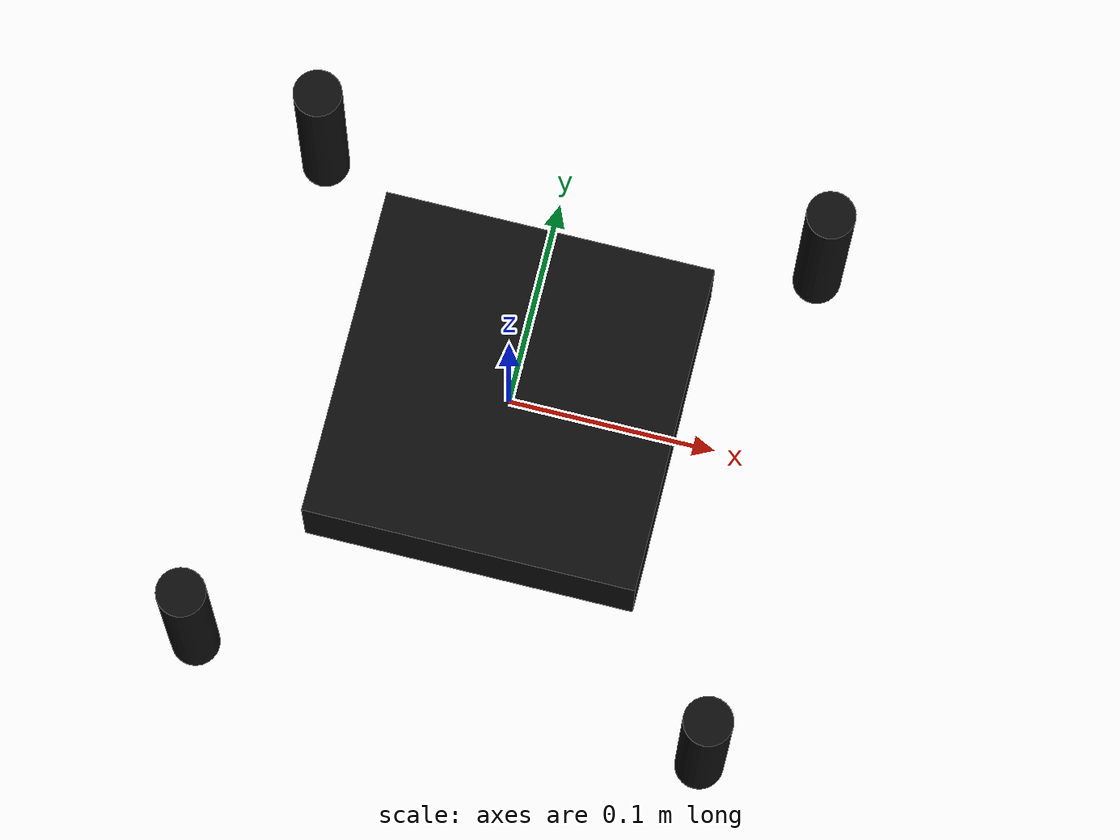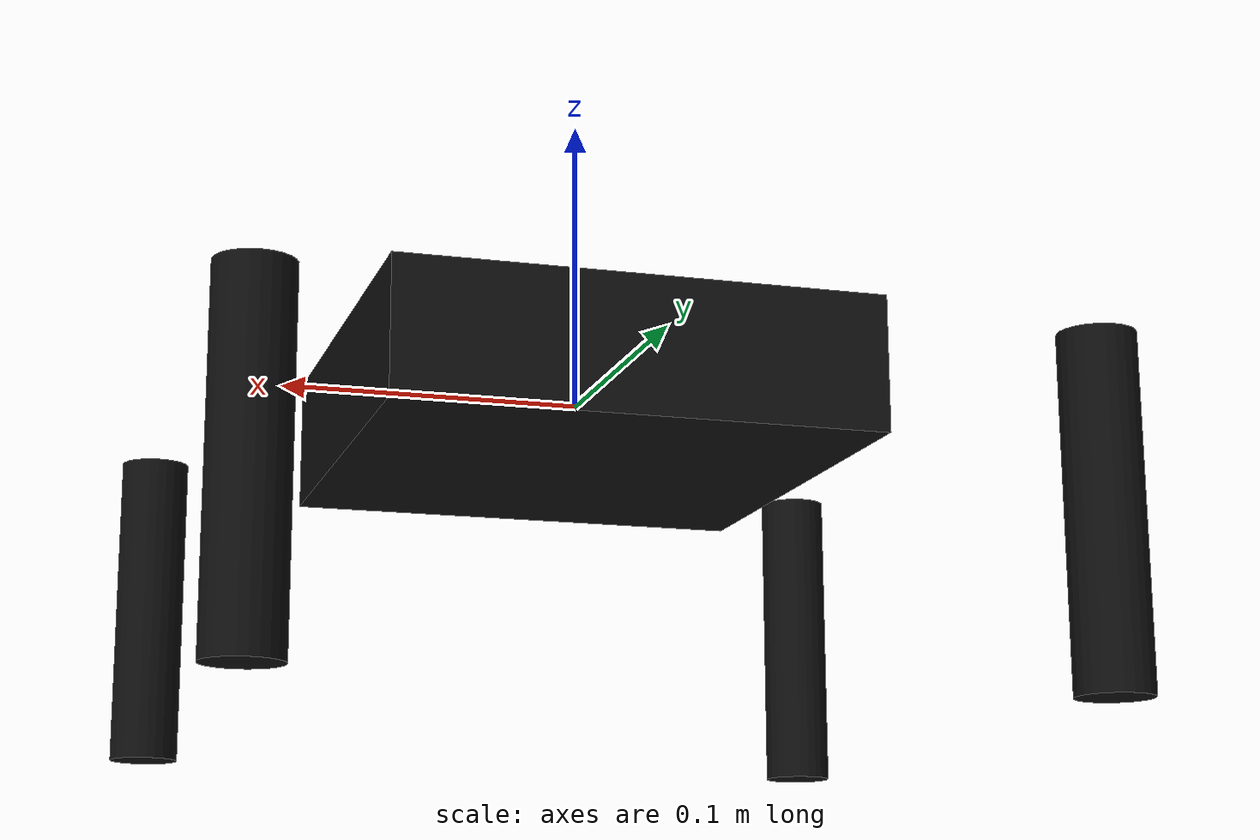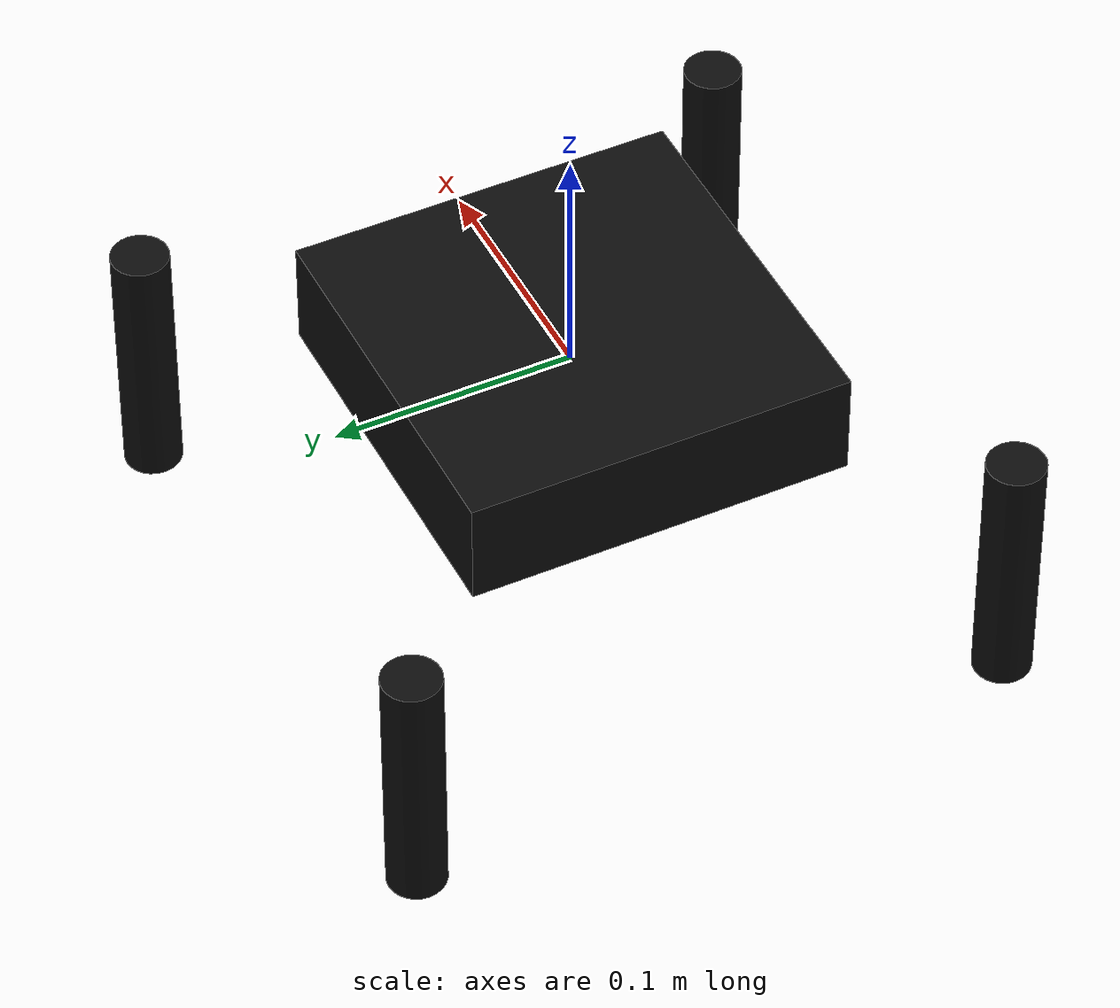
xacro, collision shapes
<?xml version="1.0"?>
<robot name="dron_f450" xmlns:xacro="http://www.ros.org/wiki/xacro">

  <xacro:arg name="mallas" default="true"/>
  <xacro:arg name="simulacion" default="true"/>

  <xacro:include filename="$(find robot_description)/urdf/parametros.xacro"/>
  <xacro:include filename="$(find robot_description)/urdf/chasis.xacro"/>
  <xacro:include filename="$(find robot_description)/urdf/sensores.xacro"/>
  <xacro:include filename="$(find robot_description)/urdf/gazebo.xacro"/>

  <xacro:chasis mallas="$(arg mallas)"/>
  <xacro:sensores simulacion="$(arg simulacion)"/>

  <xacro:if value="$(arg simulacion)">
    <xacro:gazebo_dron/>
  </xacro:if>

</robot>

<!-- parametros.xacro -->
<robot xmlns:xacro="http://www.ros.org/wiki/xacro">

  <!-- Geometría -->
  <xacro:property name="offset_motor"  value="0.1589"/>   <!-- m, en X y en Y -->
  <xacro:property name="brazo"         value="0.2255"/>   <!-- m, radio al motor -->
  <xacro:property name="radio_helice"  value="0.127"/>    <!-- m, hélice 10x4.5 -->

  <!-- Alturas respecto al origen de base_link, que está en el centro de la placa -->
  <xacro:property name="z_malla"       value="-0.020"/>   <!-- centra la malla en la placa -->
  <xacro:property name="z_motor"       value="0.015"/>
  <xacro:property name="z_helice"      value="0.082"/>    <!-- justo encima del motor -->
  <xacro:property name="z_pata"        value="-0.055"/>
  <xacro:property name="largo_pata"    value="0.11"/>

  <!-- Masa e inercia: F450 con batería 3S centrada -->
  <xacro:property name="masa"          value="1.15"/>
  <xacro:property name="ixx"           value="0.0115"/>
  <xacro:property name="iyy"           value="0.0115"/>
  <xacro:property name="izz"           value="0.0218"/>

  <!-- Posición de los sensores -->
  <xacro:property name="z_imu"         value="0.025"/>
  <xacro:property name="xyz_lidar"     value="0.02 0 -0.025"/>

  <material name="gris">  <color rgba="0.25 0.25 0.28 1.0"/></material>
  <material name="rojo">  <color rgba="0.75 0.15 0.15 1.0"/></material>
  <material name="negro"> <color rgba="0.05 0.05 0.05 1.0"/></material>

</robot>

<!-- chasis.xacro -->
<robot xmlns:xacro="http://www.ros.org/wiki/xacro">

  <!-- Pata de aterrizaje: visual y colisión, en ambas variantes -->
  <xacro:macro name="pata" params="nombre x y">
    <visual name="pata_${nombre}">
      <origin xyz="${x*0.8} ${y*0.8} ${z_pata}" rpy="0 0 0"/>
      <geometry><cylinder radius="0.008" length="${largo_pata}"/></geometry>
      <material name="negro"/>
    </visual>
    <collision name="col_pata_${nombre}">
      <origin xyz="${x*0.8} ${y*0.8} ${z_pata}" rpy="0 0 0"/>
      <geometry><cylinder radius="0.012" length="${largo_pata}"/></geometry>
    </collision>
  </xacro:macro>

  <!-- Brazo + motor + hélice con primitivas -->
  <xacro:macro name="brazo_primitivas" params="nombre x y material">
    <visual name="brazo_${nombre}">
      <origin xyz="${x/2} ${y/2} 0" rpy="0 0 ${atan2(y, x)}"/>
      <geometry><box size="${brazo} 0.025 0.012"/></geometry>
      <material name="${material}"/>
    </visual>
    <visual name="motor_${nombre}">
      <origin xyz="${x} ${y} ${z_motor}" rpy="0 0 0"/>
      <geometry><cylinder radius="0.014" length="0.030"/></geometry>
      <material name="gris"/>
    </visual>
    <visual name="helice_${nombre}">
      <origin xyz="${x} ${y} ${z_helice}" rpy="0 0 0"/>
      <geometry><cylinder radius="${radio_helice}" length="0.004"/></geometry>
      <material name="negro"/>
    </visual>
  </xacro:macro>

  <!-- Hélice con malla. El sentido de giro empareja con la mezcla: M1 y M3 a un
       lado, M2 y M4 al otro (ver control.py y motores.cpp). -->
  <xacro:macro name="helice_malla" params="nombre x y sentido">
    <visual name="helice_${nombre}">
      <origin xyz="${x} ${y} ${z_helice}" rpy="0 0 0"/>
      <geometry>
        <mesh filename="package://robot_description/meshes/Prop_${sentido}.dae"/>
      </geometry>
    </visual>
  </xacro:macro>

  <xacro:macro name="chasis" params="mallas">
    <link name="base_link">
      <inertial>
        <origin xyz="0 0 0" rpy="0 0 0"/>
        <mass value="${masa}"/>
        <inertia ixx="${ixx}" ixy="0.0" ixz="0.0" iyy="${iyy}" iyz="0.0" izz="${izz}"/>
      </inertial>

      <!-- ========== visuales ========== -->
      <xacro:if value="${mallas}">
        <visual name="chasis_malla">
          <origin xyz="0 0 ${z_malla}" rpy="0 0 0"/>
          <geometry>
            <mesh filename="package://robot_description/meshes/F450.dae"/>
          </geometry>
        </visual>
        <xacro:helice_malla nombre="m1" x="${offset_motor}"  y="${offset_motor}"  sentido="CW"/>
        <xacro:helice_malla nombre="m2" x="${offset_motor}"  y="${-offset_motor}" sentido="CCW"/>
        <xacro:helice_malla nombre="m3" x="${-offset_motor}" y="${-offset_motor}" sentido="CW"/>
        <xacro:helice_malla nombre="m4" x="${-offset_motor}" y="${offset_motor}"  sentido="CCW"/>
      </xacro:if>

      <xacro:unless value="${mallas}">
        <visual name="placa">
          <origin xyz="0 0 0" rpy="0 0 0"/>
          <geometry><box size="0.16 0.16 0.045"/></geometry>
          <material name="gris"/>
        </visual>
        <xacro:brazo_primitivas nombre="m1" x="${offset_motor}"  y="${offset_motor}"  material="rojo"/>
        <xacro:brazo_primitivas nombre="m2" x="${offset_motor}"  y="${-offset_motor}" material="rojo"/>
        <xacro:brazo_primitivas nombre="m3" x="${-offset_motor}" y="${-offset_motor}" material="gris"/>
        <xacro:brazo_primitivas nombre="m4" x="${-offset_motor}" y="${offset_motor}"  material="gris"/>
      </xacro:unless>

      <!-- ========== colisiones: idénticas en las dos variantes ========== -->
      <collision name="col_placa">
        <origin xyz="0 0 0" rpy="0 0 0"/>
        <geometry><box size="0.16 0.16 0.045"/></geometry>
      </collision>

      <xacro:pata nombre="m1" x="${offset_motor}"  y="${offset_motor}"/>
      <xacro:pata nombre="m2" x="${offset_motor}"  y="${-offset_motor}"/>
      <xacro:pata nombre="m3" x="${-offset_motor}" y="${-offset_motor}"/>
      <xacro:pata nombre="m4" x="${-offset_motor}" y="${offset_motor}"/>
    </link>
  </xacro:macro>

</robot>

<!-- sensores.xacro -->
<robot xmlns:xacro="http://www.ros.org/wiki/xacro">

  <xacro:macro name="enlace_ligero" params="nombre">
    <link name="${nombre}">
      <inertial>
        <mass value="1e-5"/>
        <inertia ixx="1e-9" ixy="0" ixz="0" iyy="1e-9" iyz="0" izz="1e-9"/>
      </inertial>
    </link>
  </xacro:macro>

  <xacro:macro name="sensores" params="simulacion">
    <xacro:enlace_ligero nombre="imu_link"/>
    <joint name="junta_imu" type="fixed">
      <parent link="base_link"/>
      <child link="imu_link"/>
      <origin xyz="0 0 ${z_imu}" rpy="0 0 0"/>
    </joint>

    <xacro:enlace_ligero nombre="lidar_link"/>
    <joint name="junta_lidar" type="fixed">
      <parent link="base_link"/>
      <child link="lidar_link"/>
      <origin xyz="${xyz_lidar}" rpy="0 1.5707963 0"/>
    </joint>

    <xacro:if value="${simulacion}">
      <!-- IMU: imita al MPU-6500 (ruido y bias del giróscopo incluidos) -->
      <gazebo reference="imu_link">
        <sensor name="imu_mpu6500" type="imu">
          <always_on>true</always_on>
          <update_rate>250</update_rate>
          <imu>
            <angular_velocity>
              <x><noise type="gaussian"><mean>0.0</mean><stddev>2.0e-3</stddev><bias_mean>1.0e-4</bias_mean></noise></x>
              <y><noise type="gaussian"><mean>0.0</mean><stddev>2.0e-3</stddev><bias_mean>1.0e-4</bias_mean></noise></y>
              <z><noise type="gaussian"><mean>0.0</mean><stddev>2.0e-3</stddev><bias_mean>1.0e-4</bias_mean></noise></z>
            </angular_velocity>
            <linear_acceleration>
              <x><noise type="gaussian"><mean>0.0</mean><stddev>1.7e-2</stddev></noise></x>
              <y><noise type="gaussian"><mean>0.0</mean><stddev>1.7e-2</stddev></noise></y>
              <z><noise type="gaussian"><mean>0.0</mean><stddev>1.7e-2</stddev></noise></z>
            </linear_acceleration>
          </imu>
          <plugin name="plugin_imu" filename="libgazebo_ros_imu_sensor.so">
            <ros>
              <namespace>/sim</namespace>
              <remapping>~/out:=imu</remapping>
            </ros>
            <frame_name>imu_link</frame_name>
            <initial_orientation_as_reference>false</initial_orientation_as_reference>
          </plugin>
        </sensor>
      </gazebo>

      <!-- LiDAR hacia abajo: imita al VL53L0X (un haz, ~2 m útiles) -->
      <gazebo reference="lidar_link">
        <sensor name="lidar_vl53l0x" type="ray">
          <always_on>true</always_on>
          <update_rate>50</update_rate>
          <visualize>false</visualize>
          <ray>
            <scan>
              <horizontal>
                <samples>1</samples>
                <resolution>1</resolution>
                <min_angle>0</min_angle>
                <max_angle>0</max_angle>
              </horizontal>
            </scan>
            <range>
              <min>0.03</min>
              <max>2.0</max>
              <resolution>0.001</resolution>
            </range>
            <noise>
              <type>gaussian</type>
              <mean>0.0</mean>
              <stddev>0.005</stddev>
            </noise>
          </ray>
          <plugin name="plugin_lidar" filename="libgazebo_ros_ray_sensor.so">
            <ros>
              <namespace>/sim</namespace>
              <remapping>~/out:=lidar</remapping>
            </ros>
            <output_type>sensor_msgs/LaserScan</output_type>
            <frame_name>lidar_link</frame_name>
          </plugin>
        </sensor>
      </gazebo>
    </xacro:if>
  </xacro:macro>

</robot>
